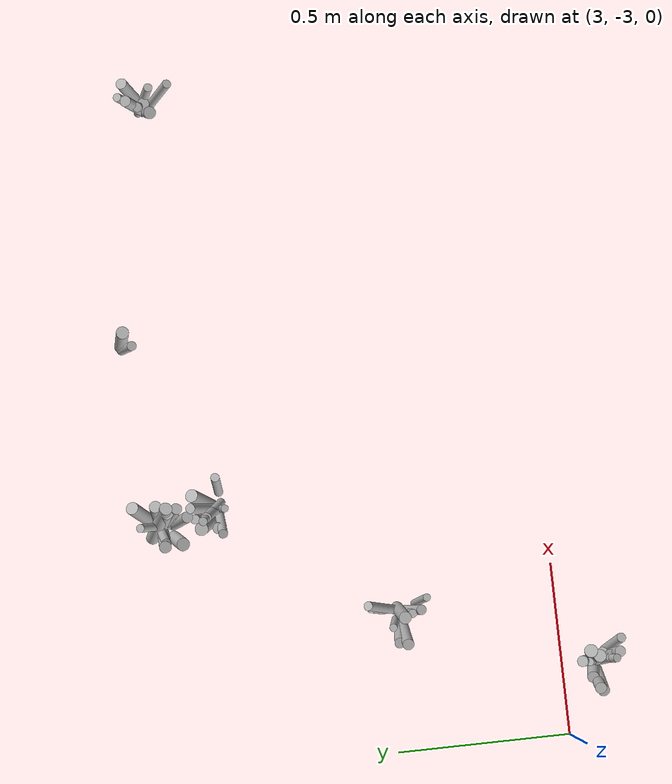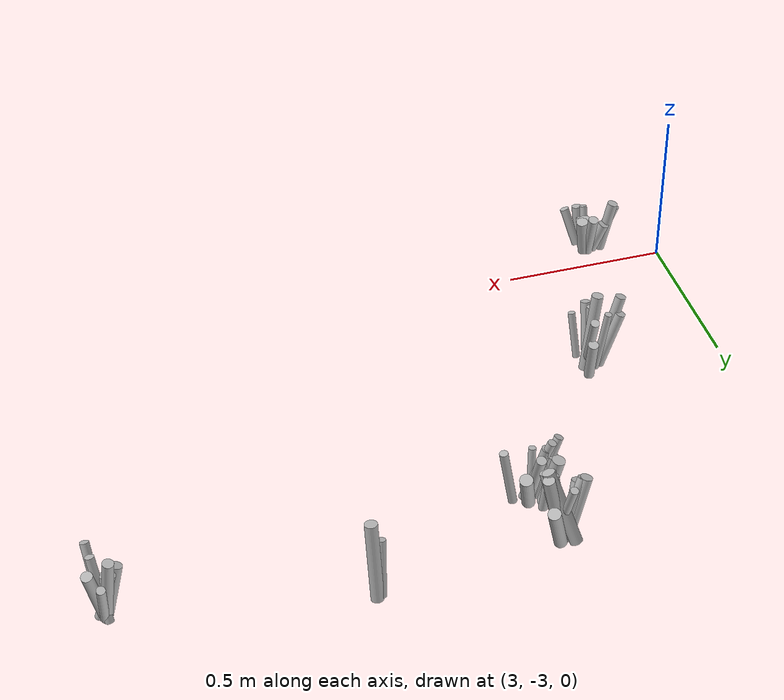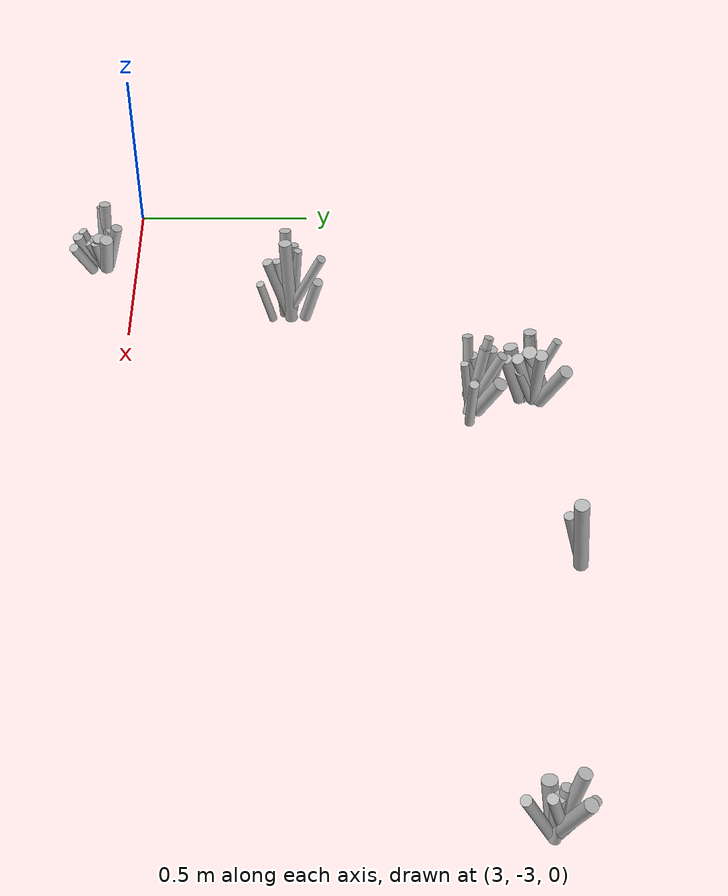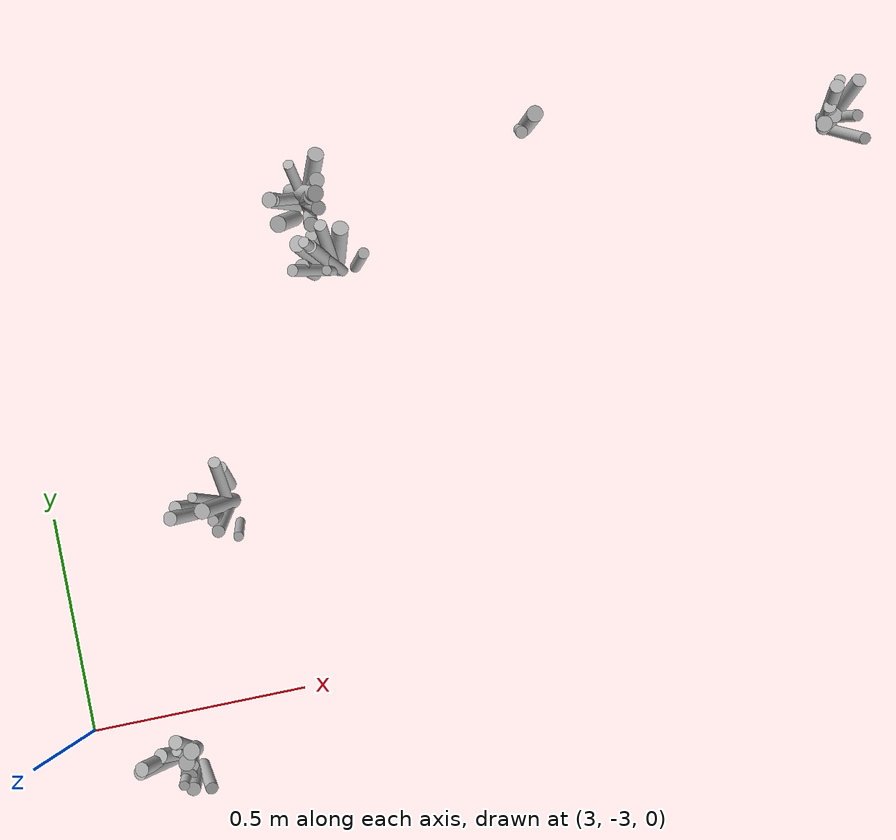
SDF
<sdf version="1.6">
 <world name="default">
  <model name="tussocks">
   <static>true</static>
   <link name="tuft4_0">
    <pose>3.6776 -1.9286 0.0658 0 0.3361 3.9965</pose>
    <visual name="tuft4_0_v">
     <geometry><cylinder><radius>0.0190</radius><length>0.1429</length></cylinder></geometry>
     <material>
      <script>
       <uri>model://bushfire/materials/scripts</uri>
       <uri>model://bushfire/materials/textures</uri>
       <name>Bushfire/Foliage2</name>
      </script>
     </material>
    </visual>
   </link>
   <link name="tuft4_1">
    <pose>3.7229 -1.8701 0.1037 0 0.3154 1.7547</pose>
    <visual name="tuft4_1_v">
     <geometry><cylinder><radius>0.0121</radius><length>0.2254</length></cylinder></geometry>
     <material>
      <script>
       <uri>model://bushfire/materials/scripts</uri>
       <uri>model://bushfire/materials/textures</uri>
       <name>Bushfire/Foliage2</name>
      </script>
     </material>
    </visual>
   </link>
   <link name="tuft4_2">
    <pose>3.7417 -1.9061 0.0964 0 0.3999 5.2375</pose>
    <visual name="tuft4_2_v">
     <geometry><cylinder><radius>0.0163</radius><length>0.2096</length></cylinder></geometry>
     <material>
      <script>
       <uri>model://bushfire/materials/scripts</uri>
       <uri>model://bushfire/materials/textures</uri>
       <name>Bushfire/Foliage2</name>
      </script>
     </material>
    </visual>
   </link>
   <link name="tuft4_3">
    <pose>3.7498 -1.8800 0.1050 0 0.2022 6.1030</pose>
    <visual name="tuft4_3_v">
     <geometry><cylinder><radius>0.0173</radius><length>0.2282</length></cylinder></geometry>
     <material>
      <script>
       <uri>model://bushfire/materials/scripts</uri>
       <uri>model://bushfire/materials/textures</uri>
       <name>Bushfire/Foliage2</name>
      </script>
     </material>
    </visual>
   </link>
   <link name="tuft4_4">
    <pose>3.7396 -1.9042 0.0683 0 0.3694 5.2117</pose>
    <visual name="tuft4_4_v">
     <geometry><cylinder><radius>0.0160</radius><length>0.1486</length></cylinder></geometry>
     <material>
      <script>
       <uri>model://bushfire/materials/scripts</uri>
       <uri>model://bushfire/materials/textures</uri>
       <name>Bushfire/Tussock</name>
      </script>
     </material>
    </visual>
   </link>
   <link name="tuft4_5">
    <pose>3.7367 -1.8924 0.0972 0 0.2538 5.3557</pose>
    <visual name="tuft4_5_v">
     <geometry><cylinder><radius>0.0189</radius><length>0.2112</length></cylinder></geometry>
     <material>
      <script>
       <uri>model://bushfire/materials/scripts</uri>
       <uri>model://bushfire/materials/textures</uri>
       <name>Bushfire/Foliage2</name>
      </script>
     </material>
    </visual>
   </link>
   <link name="tuft4_6">
    <pose>3.7298 -1.8811 0.1096 0 0.4048 5.5148</pose>
    <visual name="tuft4_6_v">
     <geometry><cylinder><radius>0.0187</radius><length>0.2384</length></cylinder></geometry>
     <material>
      <script>
       <uri>model://bushfire/materials/scripts</uri>
       <uri>model://bushfire/materials/textures</uri>
       <name>Bushfire/Tussock</name>
      </script>
     </material>
    </visual>
   </link>
   <link name="tuft4_7">
    <pose>3.7582 -1.8367 0.0807 0 0.3664 0.8448</pose>
    <visual name="tuft4_7_v">
     <geometry><cylinder><radius>0.0186</radius><length>0.1755</length></cylinder></geometry>
     <material>
      <script>
       <uri>model://bushfire/materials/scripts</uri>
       <uri>model://bushfire/materials/textures</uri>
       <name>Bushfire/Tussock</name>
      </script>
     </material>
    </visual>
   </link>
   <link name="tuft4_8">
    <pose>3.7024 -1.8860 0.0923 0 0.3885 3.6019</pose>
    <visual name="tuft4_8_v">
     <geometry><cylinder><radius>0.0133</radius><length>0.2007</length></cylinder></geometry>
     <material>
      <script>
       <uri>model://bushfire/materials/scripts</uri>
       <uri>model://bushfire/materials/textures</uri>
       <name>Bushfire/Tussock</name>
      </script>
     </material>
    </visual>
   </link>
   <link name="tuft4_9">
    <pose>3.6840 -1.8899 0.0907 0 0.2895 3.4914</pose>
    <visual name="tuft4_9_v">
     <geometry><cylinder><radius>0.0176</radius><length>0.1971</length></cylinder></geometry>
     <material>
      <script>
       <uri>model://bushfire/materials/scripts</uri>
       <uri>model://bushfire/materials/textures</uri>
       <name>Bushfire/Foliage2</name>
      </script>
     </material>
    </visual>
   </link>
   <link name="tuft4_10">
    <pose>3.7332 -1.9401 0.0813 0 0.3247 4.8544</pose>
    <visual name="tuft4_10_v">
     <geometry><cylinder><radius>0.0165</radius><length>0.1768</length></cylinder></geometry>
     <material>
      <script>
       <uri>model://bushfire/materials/scripts</uri>
       <uri>model://bushfire/materials/textures</uri>
       <name>Bushfire/Foliage2</name>
      </script>
     </material>
    </visual>
   </link>
   <link name="tuft9_10">
    <pose>4.2732 -1.8250 0.1158 0 0.1341 4.8434</pose>
    <visual name="tuft9_10_v">
     <geometry><cylinder><radius>0.0183</radius><length>0.2518</length></cylinder></geometry>
     <material>
      <script>
       <uri>model://bushfire/materials/scripts</uri>
       <uri>model://bushfire/materials/textures</uri>
       <name>Bushfire/Foliage2</name>
      </script>
     </material>
    </visual>
   </link>
   <link name="tuft9_11">
    <pose>4.2526 -1.8333 0.0784 0 0.2873 4.4436</pose>
    <visual name="tuft9_11_v">
     <geometry><cylinder><radius>0.0139</radius><length>0.1705</length></cylinder></geometry>
     <material>
      <script>
       <uri>model://bushfire/materials/scripts</uri>
       <uri>model://bushfire/materials/textures</uri>
       <name>Bushfire/Foliage2</name>
      </script>
     </material>
    </visual>
   </link>
   <link name="tuft27_0">
    <pose>3.7854 -2.0077 0.0673 0 0.3873 1.0543</pose>
    <visual name="tuft27_0_v">
     <geometry><cylinder><radius>0.0192</radius><length>0.1463</length></cylinder></geometry>
     <material>
      <script>
       <uri>model://bushfire/materials/scripts</uri>
       <uri>model://bushfire/materials/textures</uri>
       <name>Bushfire/Foliage2</name>
      </script>
     </material>
    </visual>
   </link>
   <link name="tuft27_1">
    <pose>3.8257 -2.0564 0.0863 0 0.1630 6.1310</pose>
    <visual name="tuft27_1_v">
     <geometry><cylinder><radius>0.0128</radius><length>0.1875</length></cylinder></geometry>
     <material>
      <script>
       <uri>model://bushfire/materials/scripts</uri>
       <uri>model://bushfire/materials/textures</uri>
       <name>Bushfire/Tussock</name>
      </script>
     </material>
    </visual>
   </link>
   <link name="tuft27_2">
    <pose>3.7140 -2.0584 0.0945 0 0.3723 3.3740</pose>
    <visual name="tuft27_2_v">
     <geometry><cylinder><radius>0.0135</radius><length>0.2055</length></cylinder></geometry>
     <material>
      <script>
       <uri>model://bushfire/materials/scripts</uri>
       <uri>model://bushfire/materials/textures</uri>
       <name>Bushfire/Foliage2</name>
      </script>
     </material>
    </visual>
   </link>
   <link name="tuft27_3">
    <pose>3.7611 -2.0166 0.0985 0 0.3361 1.6420</pose>
    <visual name="tuft27_3_v">
     <geometry><cylinder><radius>0.0145</radius><length>0.2140</length></cylinder></geometry>
     <material>
      <script>
       <uri>model://bushfire/materials/scripts</uri>
       <uri>model://bushfire/materials/textures</uri>
       <name>Bushfire/Tussock</name>
      </script>
     </material>
    </visual>
   </link>
   <link name="tuft27_4">
    <pose>3.7142 -2.0151 0.0792 0 0.2121 2.5689</pose>
    <visual name="tuft27_4_v">
     <geometry><cylinder><radius>0.0194</radius><length>0.1722</length></cylinder></geometry>
     <material>
      <script>
       <uri>model://bushfire/materials/scripts</uri>
       <uri>model://bushfire/materials/textures</uri>
       <name>Bushfire/Tussock</name>
      </script>
     </material>
    </visual>
   </link>
   <link name="tuft27_5">
    <pose>3.7347 -1.9950 0.0626 0 0.1298 2.0741</pose>
    <visual name="tuft27_5_v">
     <geometry><cylinder><radius>0.0138</radius><length>0.1361</length></cylinder></geometry>
     <material>
      <script>
       <uri>model://bushfire/materials/scripts</uri>
       <uri>model://bushfire/materials/textures</uri>
       <name>Bushfire/Tussock</name>
      </script>
     </material>
    </visual>
   </link>
   <link name="tuft27_6">
    <pose>3.7485 -2.0370 0.1101 0 0.3252 2.5538</pose>
    <visual name="tuft27_6_v">
     <geometry><cylinder><radius>0.0126</radius><length>0.2393</length></cylinder></geometry>
     <material>
      <script>
       <uri>model://bushfire/materials/scripts</uri>
       <uri>model://bushfire/materials/textures</uri>
       <name>Bushfire/Foliage2</name>
      </script>
     </material>
    </visual>
   </link>
   <link name="tuft27_7">
    <pose>3.7558 -2.0647 0.0773 0 0.1549 4.3211</pose>
    <visual name="tuft27_7_v">
     <geometry><cylinder><radius>0.0110</radius><length>0.1681</length></cylinder></geometry>
     <material>
      <script>
       <uri>model://bushfire/materials/scripts</uri>
       <uri>model://bushfire/materials/textures</uri>
       <name>Bushfire/Foliage2</name>
      </script>
     </material>
    </visual>
   </link>
   <link name="tuft27_8">
    <pose>3.7495 -2.0380 0.0959 0 0.2538 2.5699</pose>
    <visual name="tuft27_8_v">
     <geometry><cylinder><radius>0.0150</radius><length>0.2085</length></cylinder></geometry>
     <material>
      <script>
       <uri>model://bushfire/materials/scripts</uri>
       <uri>model://bushfire/materials/textures</uri>
       <name>Bushfire/Foliage2</name>
      </script>
     </material>
    </visual>
   </link>
   <link name="tuft27_9">
    <pose>3.7055 -2.0514 0.0660 0 0.1146 3.2215</pose>
    <visual name="tuft27_9_v">
     <geometry><cylinder><radius>0.0163</radius><length>0.1434</length></cylinder></geometry>
     <material>
      <script>
       <uri>model://bushfire/materials/scripts</uri>
       <uri>model://bushfire/materials/textures</uri>
       <name>Bushfire/Foliage2</name>
      </script>
     </material>
    </visual>
   </link>
   <link name="tuft79_0">
    <pose>3.1774 -3.0839 0.0484 0 0.3495 2.7323</pose>
    <visual name="tuft79_0_v">
     <geometry><cylinder><radius>0.0170</radius><length>0.1052</length></cylinder></geometry>
     <material>
      <script>
       <uri>model://bushfire/materials/scripts</uri>
       <uri>model://bushfire/materials/textures</uri>
       <name>Bushfire/Tussock</name>
      </script>
     </material>
    </visual>
   </link>
   <link name="tuft79_1">
    <pose>3.2282 -3.0830 0.0591 0 0.1636 0.6764</pose>
    <visual name="tuft79_1_v">
     <geometry><cylinder><radius>0.0191</radius><length>0.1284</length></cylinder></geometry>
     <material>
      <script>
       <uri>model://bushfire/materials/scripts</uri>
       <uri>model://bushfire/materials/textures</uri>
       <name>Bushfire/Tussock</name>
      </script>
     </material>
    </visual>
   </link>
   <link name="tuft79_2">
    <pose>3.2082 -3.0869 0.0643 0 0.2623 1.7036</pose>
    <visual name="tuft79_2_v">
     <geometry><cylinder><radius>0.0113</radius><length>0.1398</length></cylinder></geometry>
     <material>
      <script>
       <uri>model://bushfire/materials/scripts</uri>
       <uri>model://bushfire/materials/textures</uri>
       <name>Bushfire/Tussock</name>
      </script>
     </material>
    </visual>
   </link>
   <link name="tuft79_3">
    <pose>3.2490 -3.1474 0.0590 0 0.4135 5.3827</pose>
    <visual name="tuft79_3_v">
     <geometry><cylinder><radius>0.0142</radius><length>0.1283</length></cylinder></geometry>
     <material>
      <script>
       <uri>model://bushfire/materials/scripts</uri>
       <uri>model://bushfire/materials/textures</uri>
       <name>Bushfire/Foliage2</name>
      </script>
     </material>
    </visual>
   </link>
   <link name="tuft79_4">
    <pose>3.2090 -3.1235 0.0652 0 0.3424 4.6840</pose>
    <visual name="tuft79_4_v">
     <geometry><cylinder><radius>0.0121</radius><length>0.1418</length></cylinder></geometry>
     <material>
      <script>
       <uri>model://bushfire/materials/scripts</uri>
       <uri>model://bushfire/materials/textures</uri>
       <name>Bushfire/Tussock</name>
      </script>
     </material>
    </visual>
   </link>
   <link name="tuft79_5">
    <pose>3.2122 -3.0987 0.0547 0 0.1275 5.9755</pose>
    <visual name="tuft79_5_v">
     <geometry><cylinder><radius>0.0185</radius><length>0.1189</length></cylinder></geometry>
     <material>
      <script>
       <uri>model://bushfire/materials/scripts</uri>
       <uri>model://bushfire/materials/textures</uri>
       <name>Bushfire/Tussock</name>
      </script>
     </material>
    </visual>
   </link>
   <link name="tuft79_6">
    <pose>3.1496 -3.0976 0.0734 0 0.3708 3.1370</pose>
    <visual name="tuft79_6_v">
     <geometry><cylinder><radius>0.0164</radius><length>0.1596</length></cylinder></geometry>
     <material>
      <script>
       <uri>model://bushfire/materials/scripts</uri>
       <uri>model://bushfire/materials/textures</uri>
       <name>Bushfire/Foliage2</name>
      </script>
     </material>
    </visual>
   </link>
   <link name="tuft79_7">
    <pose>3.2224 -3.1454 0.0612 0 0.2199 4.9736</pose>
    <visual name="tuft79_7_v">
     <geometry><cylinder><radius>0.0160</radius><length>0.1331</length></cylinder></geometry>
     <material>
      <script>
       <uri>model://bushfire/materials/scripts</uri>
       <uri>model://bushfire/materials/textures</uri>
       <name>Bushfire/Foliage2</name>
      </script>
     </material>
    </visual>
   </link>
   <link name="tuft79_8">
    <pose>3.2122 -3.1110 0.0510 0 0.4140 4.8981</pose>
    <visual name="tuft79_8_v">
     <geometry><cylinder><radius>0.0191</radius><length>0.1110</length></cylinder></geometry>
     <material>
      <script>
       <uri>model://bushfire/materials/scripts</uri>
       <uri>model://bushfire/materials/textures</uri>
       <name>Bushfire/Foliage2</name>
      </script>
     </material>
    </visual>
   </link>
   <link name="tuft79_9">
    <pose>3.2098 -3.0657 0.0705 0 0.2445 1.5670</pose>
    <visual name="tuft79_9_v">
     <geometry><cylinder><radius>0.0158</radius><length>0.1532</length></cylinder></geometry>
     <material>
      <script>
       <uri>model://bushfire/materials/scripts</uri>
       <uri>model://bushfire/materials/textures</uri>
       <name>Bushfire/Foliage2</name>
      </script>
     </material>
    </visual>
   </link>
   <link name="tuft79_10">
    <pose>3.1480 -3.0903 0.0805 0 0.2082 3.0196</pose>
    <visual name="tuft79_10_v">
     <geometry><cylinder><radius>0.0164</radius><length>0.1750</length></cylinder></geometry>
     <material>
      <script>
       <uri>model://bushfire/materials/scripts</uri>
       <uri>model://bushfire/materials/textures</uri>
       <name>Bushfire/Tussock</name>
      </script>
     </material>
    </visual>
   </link>
   <link name="tuft79_11">
    <pose>3.2197 -3.1049 0.0511 0 0.1840 5.6725</pose>
    <visual name="tuft79_11_v">
     <geometry><cylinder><radius>0.0155</radius><length>0.1110</length></cylinder></geometry>
     <material>
      <script>
       <uri>model://bushfire/materials/scripts</uri>
       <uri>model://bushfire/materials/textures</uri>
       <name>Bushfire/Foliage2</name>
      </script>
     </material>
    </visual>
   </link>
   <link name="tuft126_0">
    <pose>4.9905 -1.9261 0.0988 0 0.2650 0.9447</pose>
    <visual name="tuft126_0_v">
     <geometry><cylinder><radius>0.0163</radius><length>0.2148</length></cylinder></geometry>
     <material>
      <script>
       <uri>model://bushfire/materials/scripts</uri>
       <uri>model://bushfire/materials/textures</uri>
       <name>Bushfire/Tussock</name>
      </script>
     </material>
    </visual>
   </link>
   <link name="tuft126_1">
    <pose>4.9481 -1.9616 0.0738 0 0.3175 3.6339</pose>
    <visual name="tuft126_1_v">
     <geometry><cylinder><radius>0.0180</radius><length>0.1605</length></cylinder></geometry>
     <material>
      <script>
       <uri>model://bushfire/materials/scripts</uri>
       <uri>model://bushfire/materials/textures</uri>
       <name>Bushfire/Foliage2</name>
      </script>
     </material>
    </visual>
   </link>
   <link name="tuft126_2">
    <pose>4.9859 -1.9952 0.0973 0 0.3851 4.9269</pose>
    <visual name="tuft126_2_v">
     <geometry><cylinder><radius>0.0131</radius><length>0.2114</length></cylinder></geometry>
     <material>
      <script>
       <uri>model://bushfire/materials/scripts</uri>
       <uri>model://bushfire/materials/textures</uri>
       <name>Bushfire/Tussock</name>
      </script>
     </material>
    </visual>
   </link>
   <link name="tuft126_3">
    <pose>4.9770 -1.9112 0.0800 0 0.3191 1.5246</pose>
    <visual name="tuft126_3_v">
     <geometry><cylinder><radius>0.0126</radius><length>0.1739</length></cylinder></geometry>
     <material>
      <script>
       <uri>model://bushfire/materials/scripts</uri>
       <uri>model://bushfire/materials/textures</uri>
       <name>Bushfire/Tussock</name>
      </script>
     </material>
    </visual>
   </link>
   <link name="tuft126_4">
    <pose>4.9664 -1.9446 0.0758 0 0.2735 2.8801</pose>
    <visual name="tuft126_4_v">
     <geometry><cylinder><radius>0.0140</radius><length>0.1648</length></cylinder></geometry>
     <material>
      <script>
       <uri>model://bushfire/materials/scripts</uri>
       <uri>model://bushfire/materials/textures</uri>
       <name>Bushfire/Tussock</name>
      </script>
     </material>
    </visual>
   </link>
   <link name="tuft126_5">
    <pose>4.9665 -1.9519 0.0661 0 0.1410 3.6447</pose>
    <visual name="tuft126_5_v">
     <geometry><cylinder><radius>0.0166</radius><length>0.1437</length></cylinder></geometry>
     <material>
      <script>
       <uri>model://bushfire/materials/scripts</uri>
       <uri>model://bushfire/materials/textures</uri>
       <name>Bushfire/Foliage2</name>
      </script>
     </material>
    </visual>
   </link>
   <link name="tuft126_6">
    <pose>4.9780 -1.9530 0.0949 0 0.2793 5.1338</pose>
    <visual name="tuft126_6_v">
     <geometry><cylinder><radius>0.0129</radius><length>0.2062</length></cylinder></geometry>
     <material>
      <script>
       <uri>model://bushfire/materials/scripts</uri>
       <uri>model://bushfire/materials/textures</uri>
       <name>Bushfire/Foliage2</name>
      </script>
     </material>
    </visual>
   </link>
   <link name="tuft126_7">
    <pose>4.9601 -1.9270 0.1085 0 0.1611 2.2231</pose>
    <visual name="tuft126_7_v">
     <geometry><cylinder><radius>0.0159</radius><length>0.2358</length></cylinder></geometry>
     <material>
      <script>
       <uri>model://bushfire/materials/scripts</uri>
       <uri>model://bushfire/materials/textures</uri>
       <name>Bushfire/Foliage2</name>
      </script>
     </material>
    </visual>
   </link>
   <link name="tuft128_0">
    <pose>3.3451 -2.5372 0.0890 0 0.2991 3.0573</pose>
    <visual name="tuft128_0_v">
     <geometry><cylinder><radius>0.0156</radius><length>0.1934</length></cylinder></geometry>
     <material>
      <script>
       <uri>model://bushfire/materials/scripts</uri>
       <uri>model://bushfire/materials/textures</uri>
       <name>Bushfire/Tussock</name>
      </script>
     </material>
    </visual>
   </link>
   <link name="tuft128_1">
    <pose>3.4221 -2.4825 0.0686 0 0.2398 1.3927</pose>
    <visual name="tuft128_1_v">
     <geometry><cylinder><radius>0.0157</radius><length>0.1492</length></cylinder></geometry>
     <material>
      <script>
       <uri>model://bushfire/materials/scripts</uri>
       <uri>model://bushfire/materials/textures</uri>
       <name>Bushfire/Tussock</name>
      </script>
     </material>
    </visual>
   </link>
   <link name="tuft128_2">
    <pose>3.4072 -2.5748 0.0958 0 0.2960 4.5851</pose>
    <visual name="tuft128_2_v">
     <geometry><cylinder><radius>0.0144</radius><length>0.2082</length></cylinder></geometry>
     <material>
      <script>
       <uri>model://bushfire/materials/scripts</uri>
       <uri>model://bushfire/materials/textures</uri>
       <name>Bushfire/Foliage2</name>
      </script>
     </material>
    </visual>
   </link>
   <link name="tuft128_3">
    <pose>3.4002 -2.5693 0.0923 0 0.1123 4.3162</pose>
    <visual name="tuft128_3_v">
     <geometry><cylinder><radius>0.0123</radius><length>0.2006</length></cylinder></geometry>
     <material>
      <script>
       <uri>model://bushfire/materials/scripts</uri>
       <uri>model://bushfire/materials/textures</uri>
       <name>Bushfire/Tussock</name>
      </script>
     </material>
    </visual>
   </link>
   <link name="tuft128_4">
    <pose>3.3741 -2.5260 0.0963 0 0.1356 2.7180</pose>
    <visual name="tuft128_4_v">
     <geometry><cylinder><radius>0.0111</radius><length>0.2093</length></cylinder></geometry>
     <material>
      <script>
       <uri>model://bushfire/materials/scripts</uri>
       <uri>model://bushfire/materials/textures</uri>
       <name>Bushfire/Foliage2</name>
      </script>
     </material>
    </visual>
   </link>
   <link name="tuft128_5">
    <pose>3.4320 -2.6080 0.0698 0 0.2364 5.0203</pose>
    <visual name="tuft128_5_v">
     <geometry><cylinder><radius>0.0112</radius><length>0.1516</length></cylinder></geometry>
     <material>
      <script>
       <uri>model://bushfire/materials/scripts</uri>
       <uri>model://bushfire/materials/textures</uri>
       <name>Bushfire/Foliage2</name>
      </script>
     </material>
    </visual>
   </link>
   <link name="tuft128_6">
    <pose>3.3430 -2.5523 0.1118 0 0.2758 3.2799</pose>
    <visual name="tuft128_6_v">
     <geometry><cylinder><radius>0.0162</radius><length>0.2430</length></cylinder></geometry>
     <material>
      <script>
       <uri>model://bushfire/materials/scripts</uri>
       <uri>model://bushfire/materials/textures</uri>
       <name>Bushfire/Foliage2</name>
      </script>
     </material>
    </visual>
   </link>
   <link name="tuft128_7">
    <pose>3.4195 -2.5027 0.1160 0 0.3934 1.3682</pose>
    <visual name="tuft128_7_v">
     <geometry><cylinder><radius>0.0133</radius><length>0.2522</length></cylinder></geometry>
     <material>
      <script>
       <uri>model://bushfire/materials/scripts</uri>
       <uri>model://bushfire/materials/textures</uri>
       <name>Bushfire/Foliage2</name>
      </script>
     </material>
    </visual>
   </link>
   <link name="tuft128_8">
    <pose>3.4024 -2.5472 0.1202 0 0.1447 3.5983</pose>
    <visual name="tuft128_8_v">
     <geometry><cylinder><radius>0.0177</radius><length>0.2613</length></cylinder></geometry>
     <material>
      <script>
       <uri>model://bushfire/materials/scripts</uri>
       <uri>model://bushfire/materials/textures</uri>
       <name>Bushfire/Tussock</name>
      </script>
     </material>
    </visual>
   </link>
  </model>
 </world>
</sdf>
